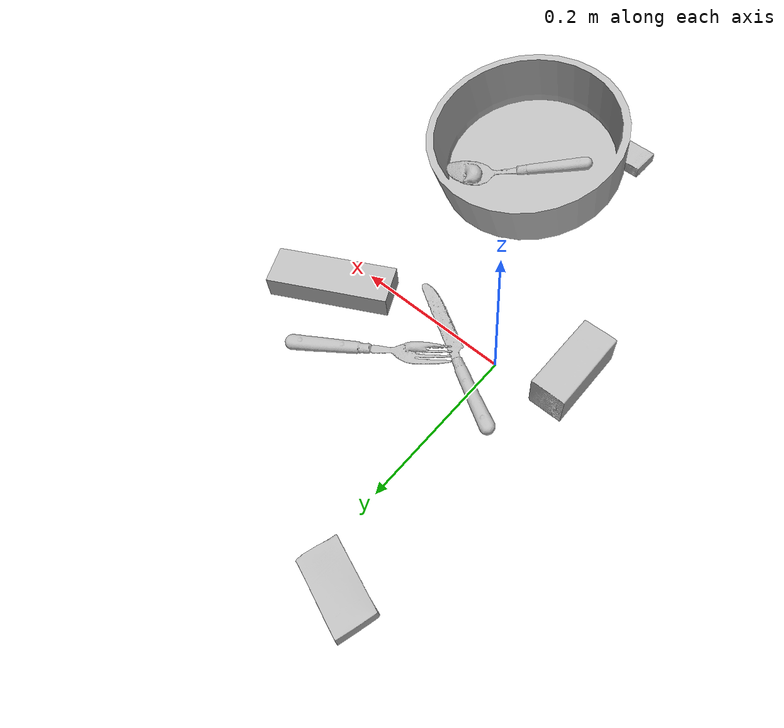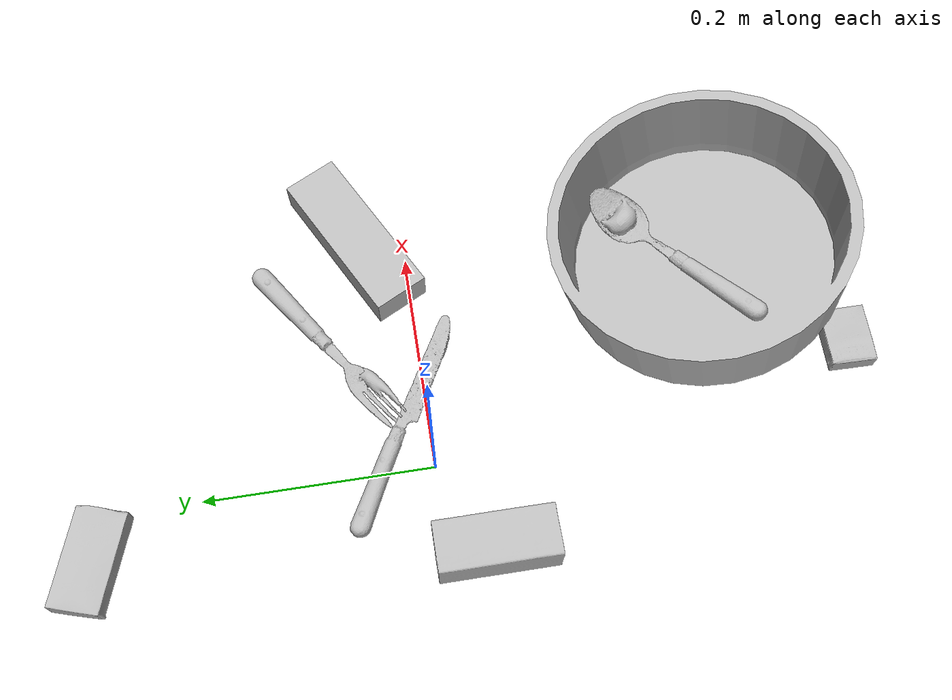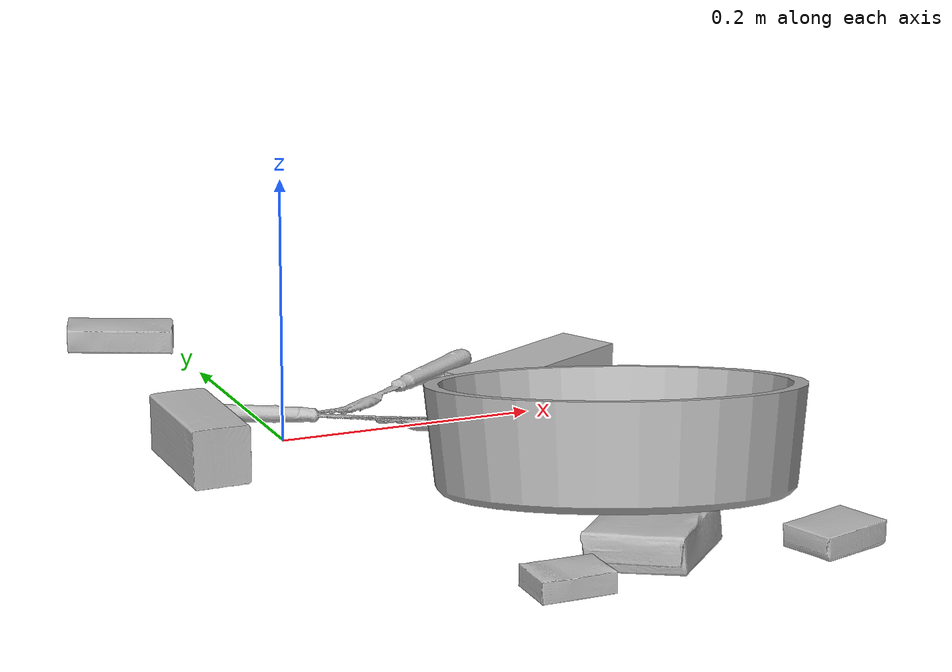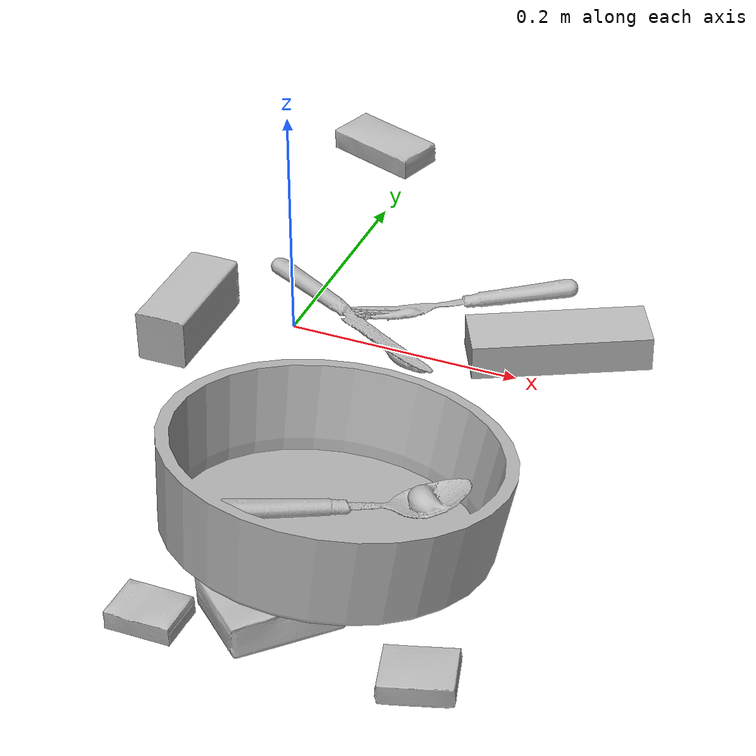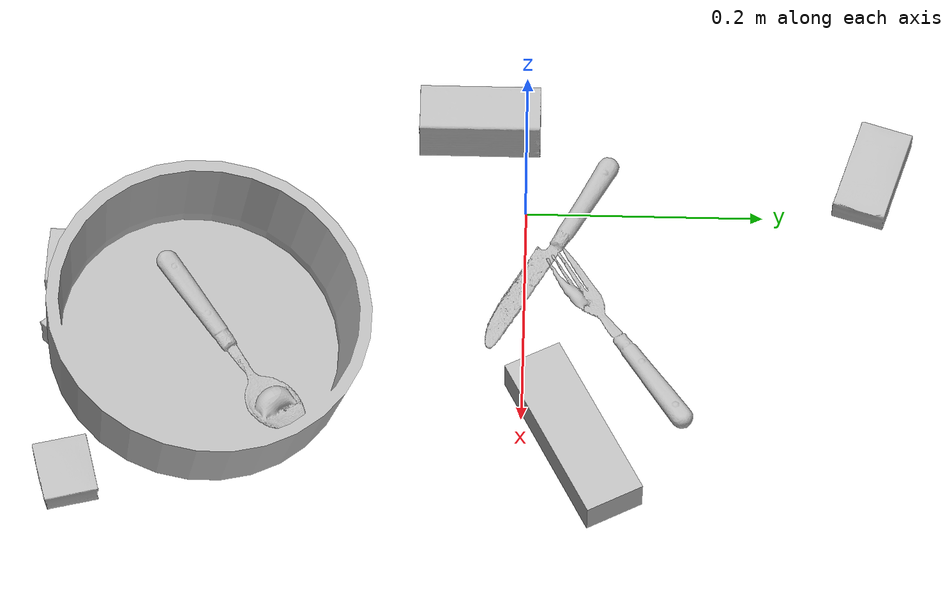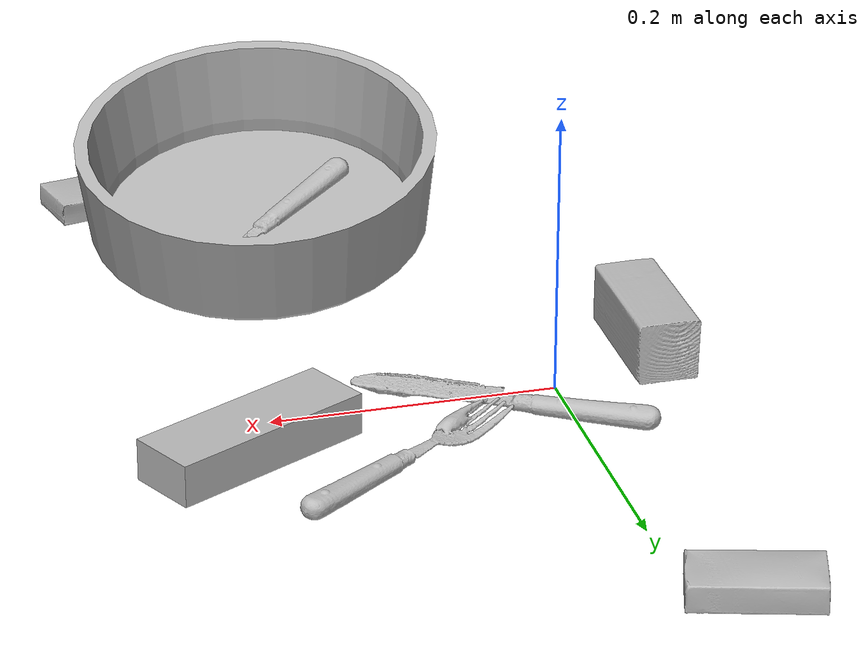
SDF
<sdf version="1.4">
  <world name="default">
    <light name="light1" type="point">
      <pose>0 0 1 0 0 0</pose>
      <diffuse>3 3 3 1</diffuse>
      <specular>3 3 3 1</specular>
    </light>
    <light name="light2" type="point">
      <pose>0 0.5 2 0 0 0</pose>
      <diffuse>1 1 1 1</diffuse>
      <specular>1 1 1 1</specular>
    </light>
    <light name="light3" type="point">
      <pose>0 0.5 2 0 0 0</pose>
      <diffuse>3 3 3 1</diffuse>
      <specular>3 3 3 1</specular>
    </light>
    <scene>
      <ambient>0.7 0.7 0.7</ambient>
    </scene>
    <model name="box11">
      <link name="link_box11">
        <collision name="default">
          <geometry>
            <mesh>
              <uri>model://sugar_box/collision_meshes/collision.obj</uri>
              <scale>0.5 0.5 0.5</scale>
            </mesh>
          </geometry>
          <surface>
            <friction>
              <ode>
                <mu>0.5</mu>
                <mu2>0.5</mu2>
              </ode>
            </friction>
          <contact>
        <ode>
            <max_vel>0</max_vel>
            <min_depth>0.0001</min_depth>
            <kp>1e8</kp>
        </ode>
    </contact></surface>
        </collision>
        <visual name="default">
          <geometry>
            <mesh>
              <uri>model://sugar_box/visual_meshes/visual.dae</uri>
              <scale>0.5 0.5 0.5</scale>
            </mesh>
          </geometry>
        </visual>
        <inertial>
          <mass>0.0727815181016922</mass>
          <pose>0.0005171863595023751 1.924554817378521e-05 -0.00018182402709499002 -0.0004046263004245651 0.001050663405794887 0.002615379021776999</pose>
          <inertia>
            <ixx>1.5160335e-05</ixx>
            <iyy>4.900132e-05</iyy>
            <izz>5.8660433e-05</izz>
            <ixy>0</ixy>
            <ixz>0</ixz>
            <iyz>0</iyz>
          </inertia>
        </inertial>
      </link>
      <pose>-0.03893548250198364 0.2926584780216217 0.011399300768971443 0.0007752005329044475 -0.02343316378275489 2.8251122104265924</pose>
    </model>
    <model name="box12">
      <link name="link_box12">
        <collision name="default">
          <geometry>
            <mesh>
              <uri>model://gelatin_box/collision_meshes/collision.obj</uri>
              <scale>1.0 1.0 1.0</scale>
            </mesh>
          </geometry>
          <surface>
            <friction>
              <ode>
                <mu>0.5</mu>
                <mu2>0.5</mu2>
              </ode>
            </friction>
          <contact>
        <ode>
            <max_vel>0</max_vel>
            <min_depth>0.0001</min_depth>
            <kp>1e8</kp>
        </ode>
    </contact></surface>
        </collision>
        <visual name="default">
          <geometry>
            <mesh>
              <uri>model://gelatin_box/visual_meshes/visual.dae</uri>
              <scale>1.0 1.0 1.0</scale>
            </mesh>
          </geometry>
        </visual>
        <inertial>
          <mass>0.2761145234107971</mass>
          <pose>0.000431961816502735 0.00011156871187267825 -0.0003640321083366871 -0.0010503719804291966 -0.004755819155973465 0.01644055947187314</pose>
          <inertia>
            <ixx>0.00019491432</ixx>
            <iyy>0.00013922628</iyy>
            <izz>0.00029670302</izz>
            <ixy>0</ixy>
            <ixz>0</ixz>
            <iyz>0</iyz>
          </inertia>
        </inertial>
      </link>
      <pose>0.13842543959617615 -0.34239909052848816 0.016519419848918915 -0.01309616094906839 -0.06765934361593458 -0.7623176382412735</pose>
    </model>
    <model name="box13">
      <link name="link_box13">
        <collision name="default">
          <geometry>
            <mesh>
              <uri>model://jenga/collision_meshes/collision.obj</uri>
              <scale>1.0 1.0 1.0</scale>
            </mesh>
          </geometry>
          <surface>
            <friction>
              <ode>
                <mu>0.5</mu>
                <mu2>0.5</mu2>
              </ode>
            </friction>
          <contact>
        <ode>
            <max_vel>0</max_vel>
            <min_depth>0.0001</min_depth>
            <kp>1e8</kp>
        </ode>
    </contact></surface>
        </collision>
        <visual name="default">
          <geometry>
            <mesh>
              <uri>model://jenga/visual_meshes/visual.dae</uri>
              <scale>1.0 1.0 1.0</scale>
            </mesh>
          </geometry>
        </visual>
        <inertial>
          <mass>0.30891793966293335</mass>
          <pose>-2.502855807051674e-07 -0.0001025000965455547 -4.0923401684267446e-05 0.0 -7.34215461761844e-07 0.0</pose>
          <inertia>
            <ixx>8.548509e-05</ixx>
            <iyy>0.00057924463</iyy>
            <izz>0.0006183929</izz>
            <ixy>0</ixy>
            <ixz>0</ixz>
            <iyz>0</iyz>
          </inertia>
        </inertial>
      </link>
      <pose>0.22165724635124207 0.042247429490089417 0.014999995939433575 1.799345991269639e-08 -2.1123623594729483e-09 0.4796304491250444</pose>
    </model>
    <model name="box21">
      <link name="link_box21">
        <collision name="default">
          <geometry>
            <mesh>
              <uri>model://pudding_box/collision_meshes/collision.obj</uri>
              <scale>0.5 0.5 0.5</scale>
            </mesh>
          </geometry>
          <surface>
            <friction>
              <ode>
                <mu>0.5</mu>
                <mu2>0.5</mu2>
              </ode>
            </friction>
          <contact>
        <ode>
            <max_vel>0</max_vel>
            <min_depth>0.0001</min_depth>
            <kp>1e8</kp>
        </ode>
    </contact></surface>
        </collision>
        <visual name="default">
          <geometry>
            <mesh>
              <uri>model://pudding_box/visual_meshes/visual.dae</uri>
              <scale>0.5 0.5 0.5</scale>
            </mesh>
          </geometry>
        </visual>
        <inertial>
          <mass>0.049023520201444626</mass>
          <pose>0.0002447411243338138 0.00040339428232982755 -0.0002594413817860186 0.005213100395594636 -0.006603798704538055 0.020079825164231697</pose>
          <inertia>
            <ixx>1.3854642e-05</ixx>
            <iyy>9.321502e-06</iyy>
            <izz>2.046e-05</izz>
            <ixy>0</ixy>
            <ixz>0</ixz>
            <iyz>0</iyz>
          </inertia>
        </inertial>
      </link>
      <pose>0.2631663680076599 -0.3681592345237732 0.009862908162176609 0.02234862129207209 -0.011391649930209165 -1.30539191230553</pose>
    </model>
    <model name="box22">
      <link name="link_box22">
        <collision name="default">
          <geometry>
            <mesh>
              <uri>model://wood_block/collision_meshes/collision.obj</uri>
              <scale>0.5 0.5 0.5</scale>
            </mesh>
          </geometry>
          <surface>
            <friction>
              <ode>
                <mu>0.5</mu>
                <mu2>0.5</mu2>
              </ode>
            </friction>
          <contact>
        <ode>
            <max_vel>0</max_vel>
            <min_depth>0.0001</min_depth>
            <kp>1e8</kp>
        </ode>
    </contact></surface>
        </collision>
        <visual name="default">
          <geometry>
            <mesh>
              <uri>model://wood_block/visual_meshes/visual.dae</uri>
              <scale>0.5 0.5 0.5</scale>
            </mesh>
          </geometry>
        </visual>
        <inertial>
          <mass>0.3074011206626892</mass>
          <pose>-2.9066577553749084e-06 -0.000285404734313488 0.00013204291462898254 -0.05220975528717129 -0.005192695583989696 -0.0068613793241849635</pose>
          <inertia>
            <ixx>0.00010283729</ixx>
            <iyy>0.00032486304</iyy>
            <izz>0.0003236479</izz>
            <ixy>0</ixy>
            <ixz>0</ixz>
            <iyz>0</iyz>
          </inertia>
        </inertial>
      </link>
      <pose>-0.07837527990341187 -0.040176622569561005 0.02262926660478115 -0.005208559848760948 0.005718765274134507 1.5743344822667469</pose>
    </model>
    <model name="box23">
      <link name="link_box23">
        <collision name="default">
          <geometry>
            <mesh>
              <uri>model://cracker_box/collision_meshes/collision.obj</uri>
              <scale>0.25 0.25 0.25</scale>
            </mesh>
          </geometry>
          <surface>
            <friction>
              <ode>
                <mu>0.5</mu>
                <mu2>0.5</mu2>
              </ode>
            </friction>
          <contact>
        <ode>
            <max_vel>0</max_vel>
            <min_depth>0.0001</min_depth>
            <kp>1e8</kp>
        </ode>
    </contact></surface>
        </collision>
        <visual name="default">
          <geometry>
            <mesh>
              <uri>model://cracker_box/visual_meshes/visual.dae</uri>
              <scale>0.25 0.25 0.25</scale>
            </mesh>
          </geometry>
        </visual>
        <inertial>
          <mass>0.04833315312862396</mass>
          <pose>0.00023660357692278922 6.358561950037256e-05 -0.00042573834070935845 -0.0003162077466025917 -0.011106490531569568 0.002546795235651085</pose>
          <inertia>
            <ixx>7.683624e-06</ixx>
            <iyy>1.268717e-05</iyy>
            <izz>1.8105757e-05</izz>
            <ixy>0</ixy>
            <ixz>0</ixz>
            <iyz>0</iyz>
          </inertia>
        </inertial>
      </link>
      <pose>0.06039898097515106 -0.37900662422180176 0.009096028283238411 -0.014051076129119712 -0.0050160641983705515 -0.01912540232431142</pose>
    </model>
    <model name="plate1">
      <link name="link_plate1">
        <collision name="default">
          <geometry>
            <mesh>
              <uri>model://pan_tefal/collision_meshes/collision.obj</uri>
              <scale>1.0 1.0 1.0</scale>
            </mesh>
          </geometry>
          <surface>
            <friction>
              <ode>
                <mu>0.5</mu>
                <mu2>0.5</mu2>
              </ode>
            </friction>
          <contact>
        <ode>
            <max_vel>0</max_vel>
            <min_depth>0.0001</min_depth>
            <kp>1e8</kp>
        </ode>
    </contact></surface>
        </collision>
        <visual name="default">
          <geometry>
            <mesh>
              <uri>model://pan_tefal/visual_meshes/visual.dae</uri>
              <scale>1.0 1.0 1.0</scale>
            </mesh>
          </geometry>
        </visual>
        <inertial>
          <mass>1.5598481893539429</mass>
          <pose>-0.0001800245518097654 3.279111842857674e-05 -0.008514934219419956 0.0008190275877392404 -0.0003301333888364595 -0.33185859522575717</pose>
          <inertia>
            <ixx>0.010767555</ixx>
            <iyy>0.010836974</iyy>
            <izz>0.019820997</izz>
            <ixy>0</ixy>
            <ixz>0</ixz>
            <iyz>0</iyz>
          </inertia>
        </inertial>
      </link>
      <pose>0.15122637152671814 -0.25918814539909363 0.059603095054626465 4.38696432150994e-05 -0.18827693476288432 -1.8998159142646553</pose>
    </model>
    <model name="silverware1">
      <link name="link_silverware1">
        <collision name="default">
          <geometry>
            <mesh>
              <uri>model://fork/collision_meshes/collision.obj</uri>
              <scale>1.0 1.0 1.0</scale>
            </mesh>
          </geometry>
          <surface>
            <friction>
              <ode>
                <mu>0.5</mu>
                <mu2>0.5</mu2>
              </ode>
            </friction>
          <contact>
        <ode>
            <max_vel>0</max_vel>
            <min_depth>0.0001</min_depth>
            <kp>1e8</kp>
        </ode>
    </contact></surface>
        </collision>
        <visual name="default">
          <geometry>
            <mesh>
              <uri>model://fork/visual_meshes/visual.dae</uri>
              <scale>1.0 1.0 1.0</scale>
            </mesh>
          </geometry>
        </visual>
        <inertial>
          <mass>0.024598950520157814</mass>
          <pose>-0.029570043087005615 0.0004658824182115495 0.0003218861820641905 -0.013552328184634912 -0.010977839901754499 0.014453902526732686</pose>
          <inertia>
            <ixx>8.623325e-07</ixx>
            <iyy>6.422079e-05</iyy>
            <izz>6.460647e-05</izz>
            <ixy>0</ixy>
            <ixz>0</ixz>
            <iyz>0</iyz>
          </inertia>
        </inertial>
      </link>
      <pose>0.12563715875148773 0.0807851180434227 0.0061717564240098 0.22859465524283545 0.02572980805392207 -2.538925205559742</pose>
    </model>
    <model name="silverware2">
      <link name="link_silverware2">
        <collision name="default">
          <geometry>
            <mesh>
              <uri>model://knife/collision_meshes/collision.obj</uri>
              <scale>1.0 1.0 1.0</scale>
            </mesh>
          </geometry>
          <surface>
            <friction>
              <ode>
                <mu>0.5</mu>
                <mu2>0.5</mu2>
              </ode>
            </friction>
          <contact>
        <ode>
            <max_vel>0</max_vel>
            <min_depth>0.0001</min_depth>
            <kp>1e8</kp>
        </ode>
    </contact></surface>
        </collision>
        <visual name="default">
          <geometry>
            <mesh>
              <uri>model://knife/visual_meshes/visual.dae</uri>
              <scale>1.0 1.0 1.0</scale>
            </mesh>
          </geometry>
        </visual>
        <inertial>
          <mass>0.03473280370235443</mass>
          <pose>-0.02378525584936142 0.0015275126788765192 5.062021955382079e-05 0.0730594717304457 0.017248417183571667 -0.007409821049452296</pose>
          <inertia>
            <ixx>9.858578e-07</ixx>
            <iyy>0.00013343782</iyy>
            <izz>0.00013375531</izz>
            <ixy>0</ixy>
            <ixz>0</ixz>
            <iyz>0</iyz>
          </inertia>
        </inertial>
      </link>
      <pose>0.041609346866607666 0.02023005113005638 0.008136789314448833 -0.2820862155487302 -0.008864168687103243 -0.5115309277030643</pose>
    </model>
    <model name="silverware3">
      <link name="link_silverware3">
        <collision name="default">
          <geometry>
            <mesh>
              <uri>model://spoon/collision_meshes/collision.obj</uri>
              <scale>1.0 1.0 1.0</scale>
            </mesh>
          </geometry>
          <surface>
            <friction>
              <ode>
                <mu>0.5</mu>
                <mu2>0.5</mu2>
              </ode>
            </friction>
          <contact>
        <ode>
            <max_vel>0</max_vel>
            <min_depth>0.0001</min_depth>
            <kp>1e8</kp>
        </ode>
    </contact></surface>
        </collision>
        <visual name="default">
          <geometry>
            <mesh>
              <uri>model://spoon/visual_meshes/visual.dae</uri>
              <scale>1.0 1.0 1.0</scale>
            </mesh>
          </geometry>
        </visual>
        <inertial>
          <mass>0.02618301659822464</mass>
          <pose>-0.0055263168178498745 -0.00160341733135283 -0.0007271658978424966 0.035216710647368914 -0.039065848798616645 0.0061506127138874515</pose>
          <inertia>
            <ixx>1.4563418e-06</ixx>
            <iyy>9.96255e-05</iyy>
            <izz>0.000100343714</izz>
            <ixy>0</ixy>
            <ixz>0</ixz>
            <iyz>0</iyz>
          </inertia>
        </inertial>
      </link>
      <pose>0.15194183588027954 -0.2387630194425583 0.0328485332429409 -0.09961189131324244 0.177327302896828 0.6549857771649709</pose>
    </model>
  <physics type="ode">
      <max_contacts>50</max_contacts>
      <ode>
        <solver>
          <type>quick</type>
          <iters>75</iters>
        </solver>
        <constraints>
          <contact_max_correcting_vel>0</contact_max_correcting_vel>
          <contact_surface_layer>0</contact_surface_layer>
        </constraints>
      </ode>
    </physics></world>
</sdf>
